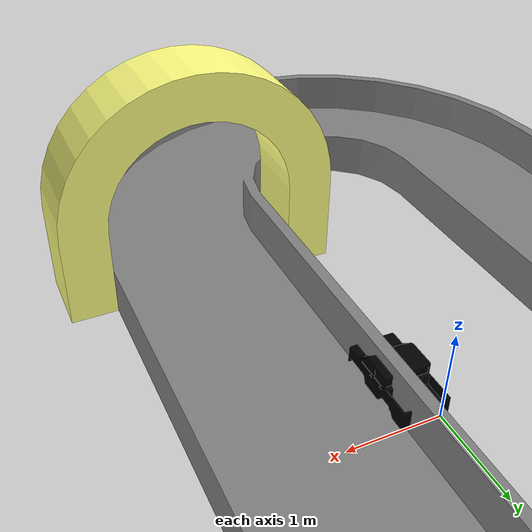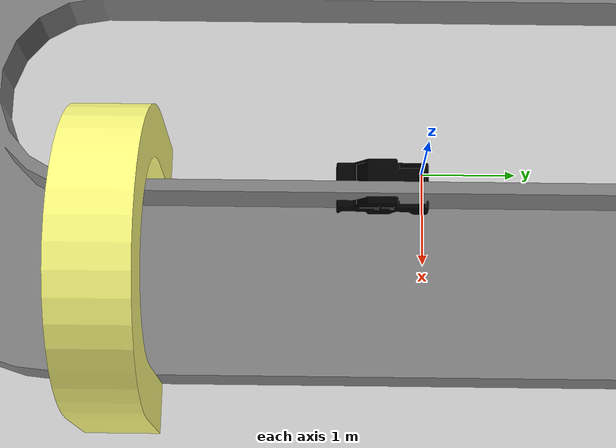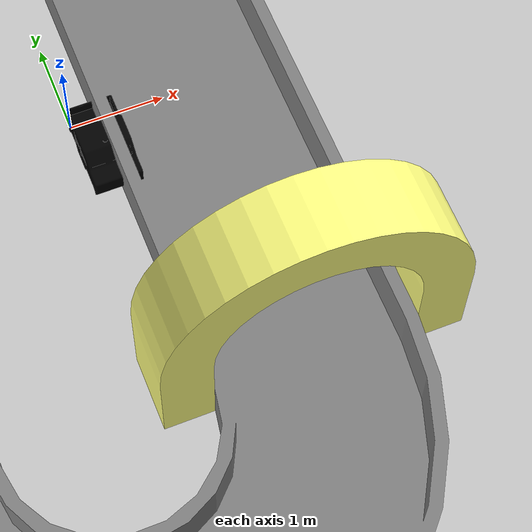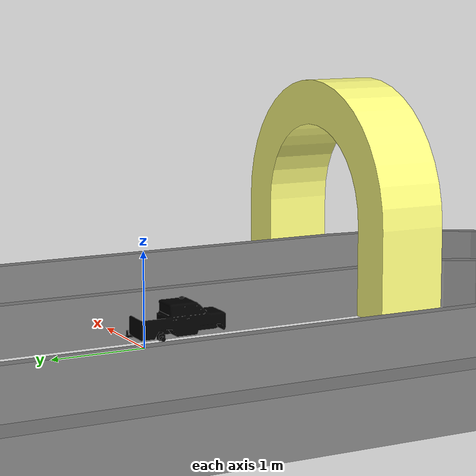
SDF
<sdf version='1.7'>
  <model name='arena'>
    <link name='base_link'>
      <inertial>
        <pose>-0.031819 -0.449892 0.243258 0 -0 0</pose>
        <mass>17511.1</mass>
        <inertia>
          <ixx>448739</ixx>
          <ixy>8841.84</ixy>
          <ixz>-3530.2</ixz>
          <iyy>754791</iyy>
          <iyz>8093.24</iyz>
          <izz>471733</izz>
        </inertia>
      </inertial>
      <collision name='base_link_collision'>
        <pose>0 0 0 0 -0 0</pose>
        <geometry>
          <mesh>
            <scale>1 1 1</scale>
            <uri>model://arena/meshes/base_link.STL</uri>
          </mesh>
        </geometry>
      </collision>
      <collision name='base_link_fixed_joint_lump__check_point_collision_1'>
        <pose>1.27331 -2.67369 0.000283 1.5708 -0 0</pose>
        <geometry>
          <mesh>
            <scale>1 1 1</scale>
            <uri>model://arena/meshes/check_point.STL</uri>
          </mesh>
        </geometry>
      </collision>
      <collision name='base_link_fixed_joint_lump__track_collision_2'>
        <pose>-0.75869 -0.133689 0.000283 -1.5708 -0 -1.5708</pose>
        <geometry>
          <mesh>
            <scale>1 1 1</scale>
            <uri>model://arena/meshes/track.STL</uri>
          </mesh>
        </geometry>
      </collision>
      <visual name='base_link_visual'>
        <pose>0 0 0 0 -0 0</pose>
        <geometry>
          <mesh>
            <scale>1 1 1</scale>
            <uri>model://arena/meshes/base_link.STL</uri>
          </mesh>
        </geometry>
        <material> <!-- Wheel material -->
          <ambient>0 0 0 1</ambient>
          <diffuse>0 0 0 1</diffuse>
          <specular>0 0 0 0</specular>
          <emissive>0 0 0 1</emissive>
        </material>
      </visual>
      <visual name='base_link_fixed_joint_lump__check_point_visual_1'>
        <pose>1.27331 -2.67369 0.000283 1.5708 -0 0</pose>
        <geometry>
          <mesh>
            <scale>1 1 1</scale>
            <uri>model://arena/meshes/check_point.STL</uri>
          </mesh>
        </geometry>
        <material> <!-- Wheel material -->
          <ambient>1 1 0.501960784313725 1</ambient>
          <diffuse>1 1 0.501960784313725 1</diffuse>
          <specular>0 0 0 0</specular>
          <emissive>0 0 0 1</emissive>
        </material>
      </visual>
      <visual name='base_link_fixed_joint_lump__track_visual_2'>
        <pose>-0.75869 -0.133689 0.000283 -1.5708 -0 -1.5708</pose>
        <geometry>
          <mesh>
            <scale>1 1 1</scale>
            <uri>model://arena/meshes/track.STL</uri>
          </mesh>
        </geometry>
        <material> <!-- Wheel material -->
          <ambient>0.501960784313725 0.501960784313725 0.501960784313725 1</ambient>
          <diffuse>0.501960784313725 0.501960784313725 0.501960784313725 1</diffuse>
          <specular>0 0 0 0</specular>
          <emissive>0 0 0 1</emissive>
        </material>
      </visual>
    </link>
  </model>
</sdf>
